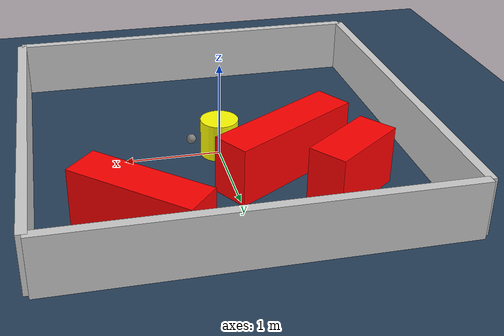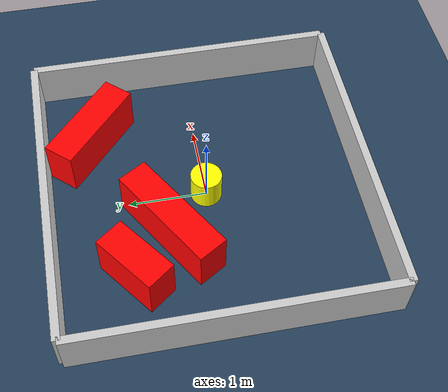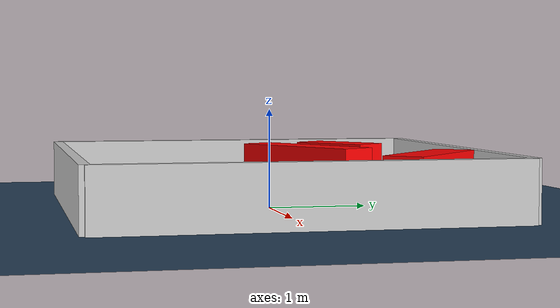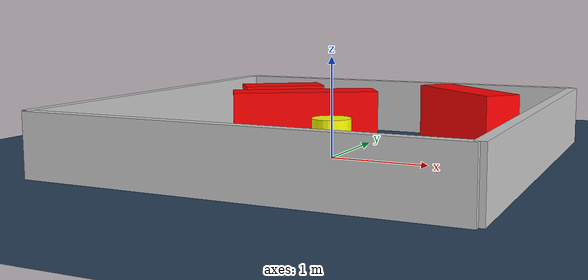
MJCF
<?xml version="1.0" ?>
<mujoco model="generated_environment">
  <option timestep="0.01" integrator="RK4" cone="elliptic"/>
  <default>
    <geom density="1"/>
  </default>
  <asset>
    <texture builtin="gradient" height="3072" rgb1="0.3 0.5 0.7" rgb2="0 0 0" type="skybox" width="512"/>
    <texture builtin="checker" height="300" mark="edge" markrgb="0.8 0.8 0.8" name="groundplane" rgb1="0.2 0.3 0.4" rgb2="0.1 0.2 0.3" type="2d" width="300"/>
    <material name="groundplane" reflectance="0.2" texrepeat="5 5" texture="groundplane" texuniform="true"/>
    <material name="robot" rgba="0.0 1.0 0.0 1"/>
  </asset>
  <worldbody>
    <light dir="0 0 -1" directional="true" pos="0 0 1.5"/>
    <geom condim="4" friction="1.0 0.005 0.001" material="groundplane" name="floor" size="0 0 0.05" type="plane"/>
    <body name="walls">
      <geom name="wall_1" condim="4" pos="-2.0 0.0 0.3" rgba="0.800000011920929 0.800000011920929 0.800000011920929 1.0" size="0.05 2.0 0.3" type="box"/>
      <geom name="wall_2" condim="4" pos="2.0 0.0 0.3" rgba="0.800000011920929 0.800000011920929 0.800000011920929 1.0" size="0.05 2.0 0.3" type="box"/>
      <geom name="wall_3" condim="4" pos="0.0 -2.0 0.3" rgba="0.800000011920929 0.800000011920929 0.800000011920929 1.0" size="2.0 0.05 0.3" type="box"/>
      <geom name="wall_4" condim="4" pos="0.0 2.0 0.3" rgba="0.800000011920929 0.800000011920929 0.800000011920929 1.0" size="2.0 0.05 0.3" type="box"/>
    </body>
    <body name="robot">
      <joint name="joint_x" type="slide" pos="0 0 0" axis="1 0 0"/>
      <joint name="joint_y" type="slide" pos="0 0 0" axis="0 1 0"/>
      <geom name="robot" type="sphere" pos="0.3 0.0 0.2" size="0.05" mass="5." friction="1.0 0.005 0.0001" condim="4" rgba="0.5 0.5 0.5 1.0"/>
      <site name="sensor_ball"/>
    </body>
    <body name="obstacle_movable_1">
      <geom name="obstacle_movable_1" condim="4" pos="0.0 0.0 0.2" euler="0 0 0.0" friction="1.0 0.005 0.001" rgba="1.0 1.0 0.0 1.0" size="0.2 0.2 0.0" type="cylinder" mass="0.1"/>
      <joint type="free"/>
    </body>
    <body name="obstacle_2_static">
      <geom name="obstacle_2_static" condim="4" pos="0.9974633365839654 1.3557697175586954 0.3" euler="0 0 318.2897080276342" friction="1.0 0.005 0.001" rgba="1 0 0 1" size="0.6568983131304025 0.2 0.3" type="box"/>
    </body>
    <body name="obstacle_3_static">
      <geom name="obstacle_3_static" condim="4" pos="-1.0821331821566045 1.0343965676335587 0.3" euler="0 0 36.97069491599882" friction="1.0 0.005 0.001" rgba="1 0 0 1" size="0.43812434727301847 0.2 0.3" type="box"/>
    </body>
    <body name="obstacle_4_static">
      <geom name="obstacle_4_static" condim="4" pos="-0.5521477530284071 0.523968282000354 0.3" euler="0 0 211.27529717639771" friction="1.0 0.005 0.001" rgba="1 0 0 1" size="0.7564754199517238 0.2 0.3" type="box"/>
    </body>
  </worldbody>
  <actuator>
    <motor name="actuator_x" joint="joint_x" gear="1" ctrlrange="-1 1"/>
    <motor name="actuator_y" joint="joint_y" gear="1" ctrlrange="-1 1"/>
  </actuator>
</mujoco>
